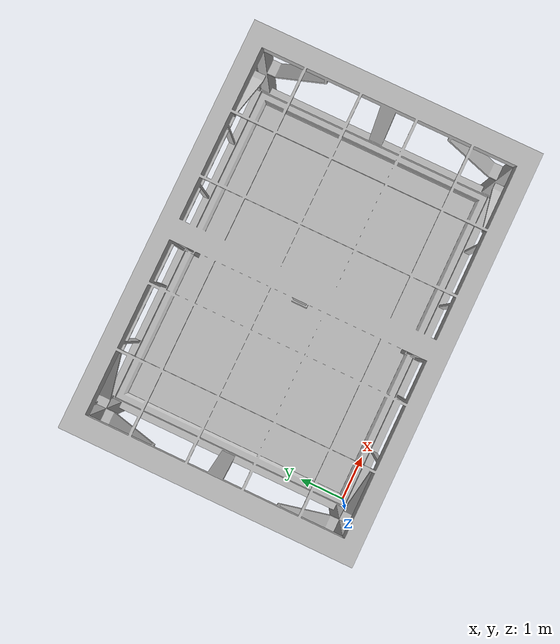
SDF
<?xml version="1.0"?>
<sdf version="1.10">
  <world name="artemis-arena">

    <plugin
      filename="gz-sim-physics-system"
      name="gz::sim::systems::Physics">
    </plugin>
    <plugin
      filename="gz-sim-user-commands-system"
      name="gz::sim::systems::UserCommands">
    </plugin>
    <plugin
      filename="gz-sim-scene-broadcaster-system"
      name="gz::sim::systems::SceneBroadcaster">
    </plugin>
    <plugin
      filename="gz-sim-sensors-system"
      name="gz::sim::systems::Sensors">
      <render_engine>ogre2</render_engine>
    </plugin>
    <plugin
      filename="gz-sim-imu-system"
      name="gz::sim::systems::Imu">
    </plugin>

    <light name="sun" type="directional">
      <cast_shadows>true</cast_shadows>
      <pose>0 0 10 0 0 0</pose>
      <diffuse>0.8 0.8 0.8 1</diffuse>
      <specular>0.2 0.2 0.2 1</specular>
      <attenuation>
        <range>1000</range>
        <constant>0.9</constant>
        <linear>0.01</linear>
        <quadratic>0.001</quadratic>
      </attenuation>
      <direction>-0.5 0.1 -0.9</direction>
    </light>

    <model name = "artemis_arena">
      <static>true</static>
      <link name = "link">
        <visual name = "visual">
          <geometry>
            <mesh>
              <uri>./meshes/artemis-arena.dae</uri>
              <scale>1 1 1</scale>
            </mesh>
          </geometry>
        </visual>
        <collision name = "collision">
          <geometry>
              <mesh>
                <uri>./meshes/artemis-arena-collision.stl</uri>
                <scale>1 1 1</scale>
              </mesh>
            </geometry>
        </collision>
      </link>
    </model>

        <!-- 3D scene -->

        <!-- Plugins that add functionality to the scene -->

    <physics type="ode">
      <real_time_update_rate>1000.0</real_time_update_rate>
      <max_step_size>0.001</max_step_size>
      <real_time_factor>1</real_time_factor>
      <ode>
        <solver>
          <type>quick</type>
          <iters>150</iters>
          <precon_iters>0</precon_iters>
          <sor>1.400000</sor>
          <use_dynamic_moi_rescaling>1</use_dynamic_moi_rescaling>
        </solver>
        <constraints>
          <cfm>0.00001</cfm>
          <erp>0.2</erp>
          <contact_max_correcting_vel>2000.000000</contact_max_correcting_vel>
          <contact_surface_layer>0.01000</contact_surface_layer>
        </constraints>
      </ode>
    </physics>

  </world>
</sdf>
